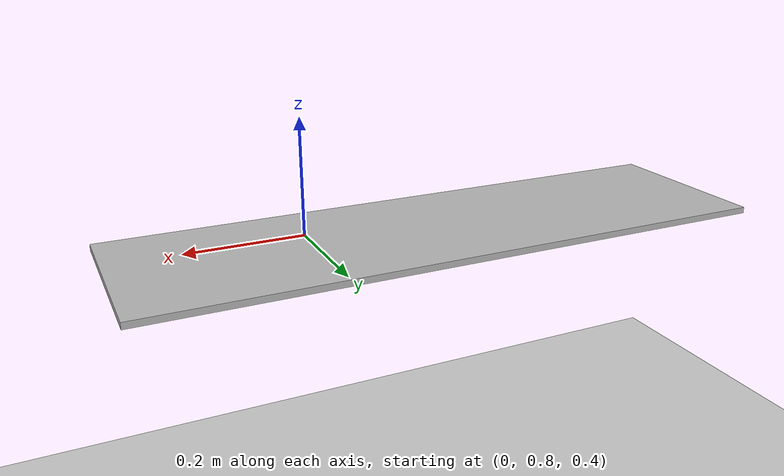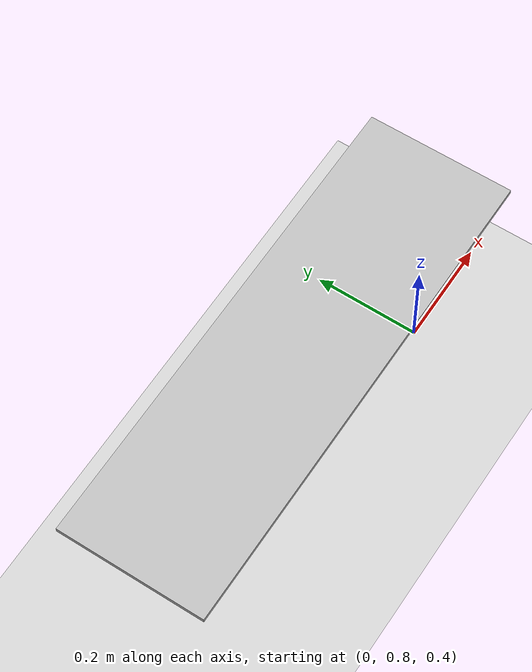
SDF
<?xml version="1.0" ?>

<sdf version="1.5">

  <world name="default">

    <gui>
      <camera name="user_default">
        <pose>-0.18 2.67 0.8 0 0 -1.658</pose>
      </camera>
    </gui>

    <!-- A global light source -->
    <include>
      <uri>model://sun</uri>
    </include>

    <!-- A ground plane -->
    <include>
      <uri>model://ground_plane</uri>
    </include>

    <!-- A plane -->
    <model name="plane">
      <static>true</static>
      <pose>-0.1685 0.947 0.4338 0 0 0</pose>
      <link name="link">
        <collision name="collision">
          <geometry>
            <box>
              <size>1.0 0.3 0.01</size>
            </box>
          </geometry>
        </collision>
        <visual name="visual">
          <geometry>
            <box>
              <size>1.0 0.3 0.01</size>
            </box>
          </geometry>
        </visual>
      </link>
    </model>

  </world>

</sdf>
